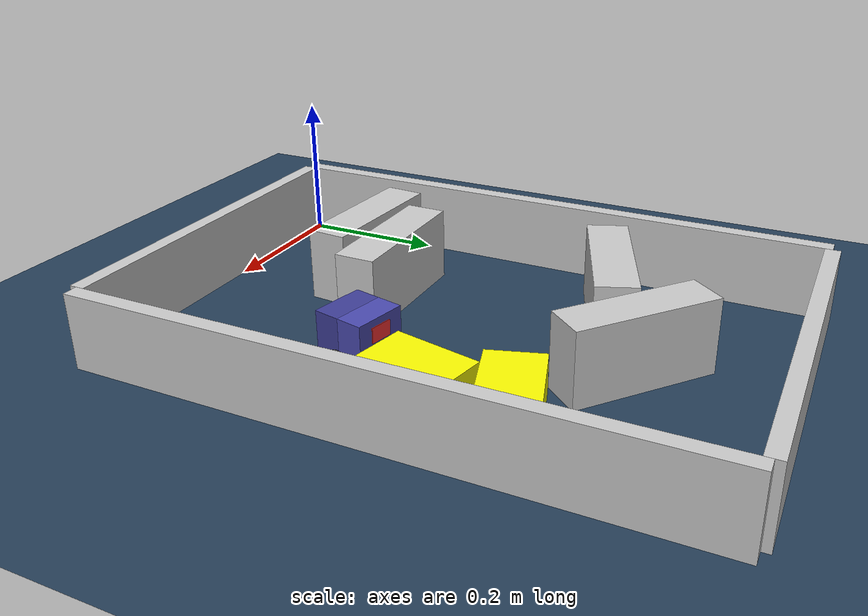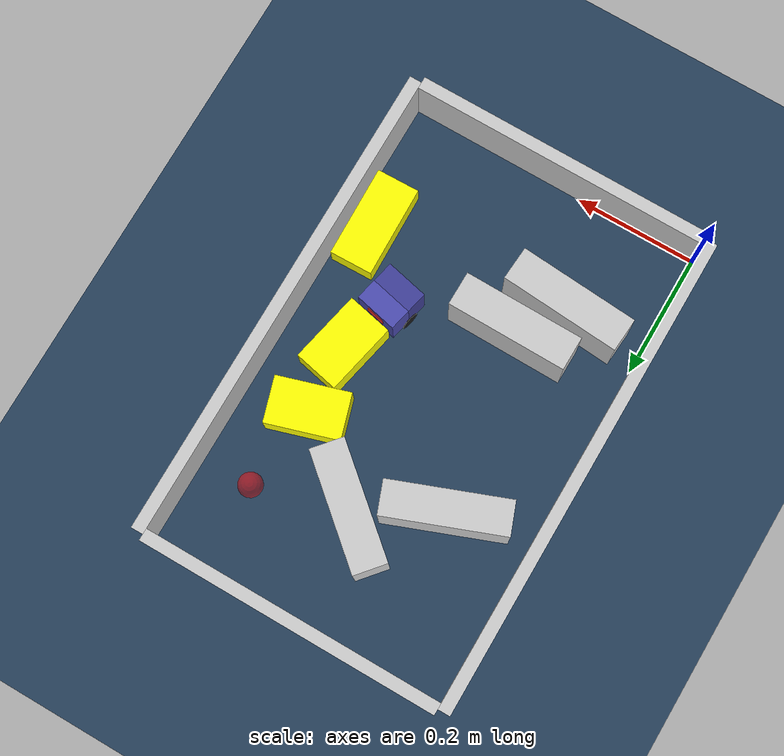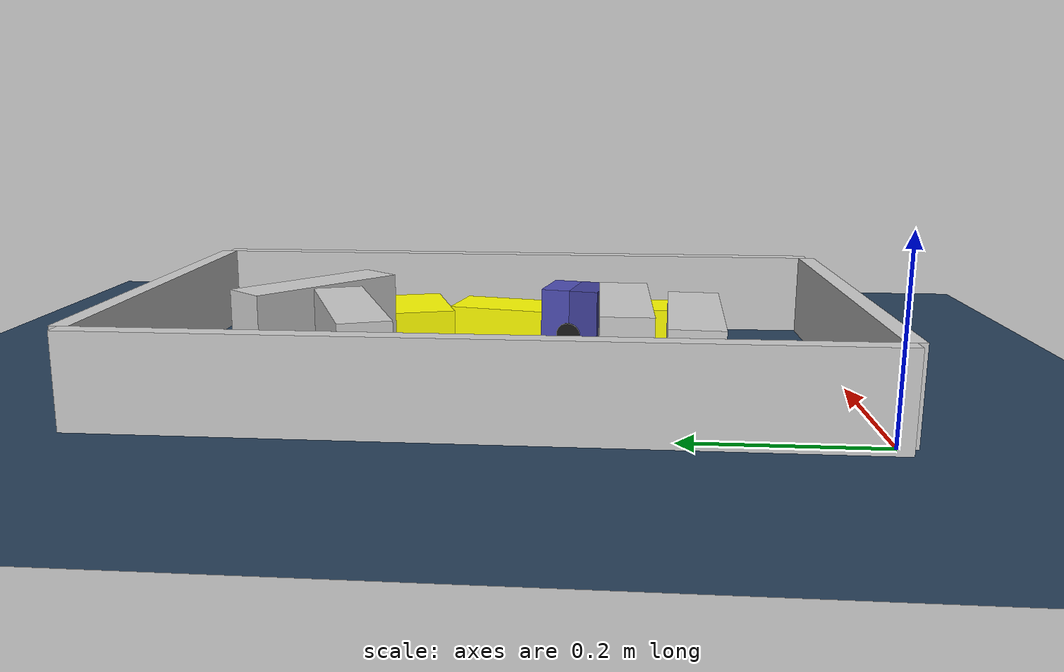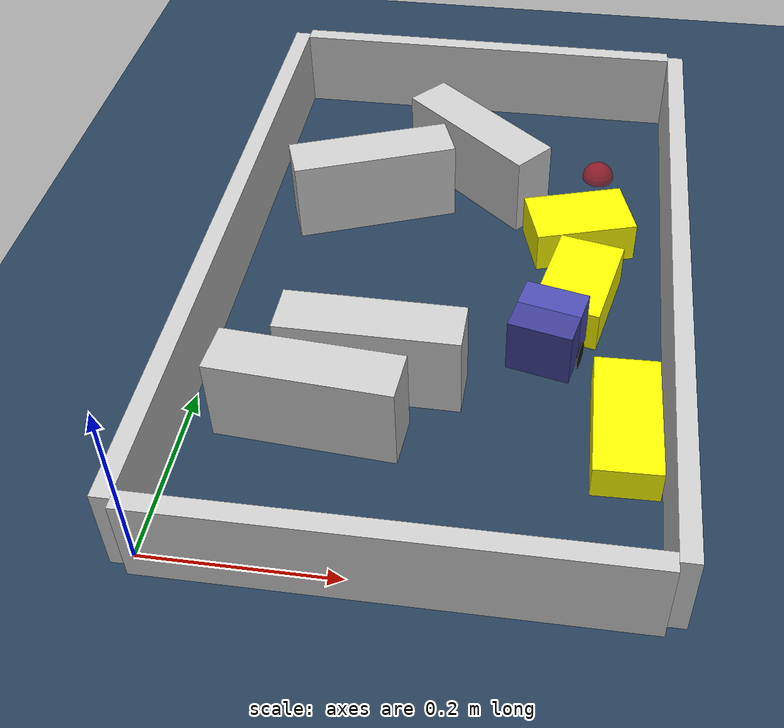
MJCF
<?xml version='1.0' encoding='utf-8'?>
<mujoco model="real_buildable">
  <compiler angle="degree" />
  <option timestep="0.002" integrator="implicitfast" iterations="100" cone="elliptic" />
  <default>
    <geom density="1" />
  </default>
  <asset>
    <texture builtin="gradient" height="3072" rgb1="0.3 0.5 0.7" rgb2="0 0 0" type="skybox" width="512" />
    <texture builtin="checker" height="300" mark="edge" markrgb="0.8 0.8 0.8" name="groundplane" rgb1="0.2 0.3 0.4" rgb2="0.1 0.2 0.3" type="2d" width="300" />
    <material name="groundplane" reflectance="0.2" texrepeat="5 5" texture="groundplane" texuniform="true" />
  </asset>
  <worldbody>
    <light dir="0 0 -1" directional="true" pos="0 0 1.5" />
    <geom name="floor" type="plane" condim="4" friction="0.5 0.005 0.001" material="groundplane" size="0 0 0.05" />
    <body name="walls">
      <geom name="wall_boundary_left" type="box" condim="4" friction="1.0 0.005 0.0001" rgba="0.8 0.8 0.8 1" pos="-0.010000 0.387500 0.050000" euler="0 0 0.000000" size="0.010000 0.397500 0.050000" />
      <geom name="wall_boundary_right" type="box" condim="4" friction="1.0 0.005 0.0001" rgba="0.8 0.8 0.8 1" pos="0.500000 0.387500 0.050000" euler="0 0 0.000000" size="0.010000 0.397500 0.050000" />
      <geom name="wall_boundary_bottom" type="box" condim="4" friction="1.0 0.005 0.0001" rgba="0.8 0.8 0.8 1" pos="0.245000 -0.010000 0.050000" euler="0 0 0.000000" size="0.245000 0.010000 0.050000" />
      <geom name="wall_boundary_top" type="box" condim="4" friction="1.0 0.005 0.0001" rgba="0.8 0.8 0.8 1" pos="0.245000 0.785000 0.050000" euler="0 0 0.000000" size="0.245000 0.010000 0.050000" />
      <geom name="wall_inner_1" type="box" condim="4" friction="1.0 0.005 0.0001" rgba="0.8 0.8 0.8 1" pos="0.130406 0.172466 0.050000" euler="0 0 -4.223531" size="0.097500 0.027500 0.050000" />
      <geom name="wall_inner_2" type="box" condim="4" friction="1.0 0.005 0.0001" rgba="0.8 0.8 0.8 1" pos="0.183492 0.241933 0.050000" euler="0 0 -0.526590" size="0.097500 0.027500 0.050000" />
      <geom name="wall_inner_3" type="box" condim="4" friction="1.0 0.005 0.0001" rgba="0.8 0.8 0.8 1" pos="0.132000 0.532000 0.050000" euler="0 0 20.900000" size="0.097500 0.027500 0.050000" />
      <geom name="wall_inner_4" type="box" condim="4" friction="1.0 0.005 0.0001" rgba="0.8 0.8 0.8 1" pos="0.256000 0.601000 0.050000" euler="0 0 139.600000" size="0.097500 0.027500 0.050000" />
    </body>
    <body name="car" pos="0.36344684804417576 0.29677605651774736 0.01" quat="0.78122102495925461 0 0 0.62425452354116884">
      <freejoint name="car_freejoint" />
      <inertial pos="0 0 0.0375" mass="0.35" diaginertia="0.000266 0.000266 0.000286" />
      <geom name="front_chassis_collision" type="box" pos="0.0175 0 0.0375" size="0.0175 0.035 0.0325" rgba="0.3 0.3 0.7 1" />
      <geom name="rear_chassis_collision" type="box" pos="-0.0175 0 0.0375" size="0.0175 0.035 0.0325" rgba="0.25 0.25 0.6 1" />
      <geom name="front_marker" type="box" pos="0.034 0 0.0505" size="0.002 0.015 0.01" rgba="1 0.2 0.2 1" contype="0" conaffinity="0" />
      <body name="rear_support_body" pos="-0.03 0 0.0025">
        <joint name="rear_caster_joint" type="ball" damping="0.0001" />
        <inertial pos="0 0 0" mass="0.025" diaginertia="0.000001 0.000001 0.000001" />
        <geom name="rear_support" type="sphere" pos="0 0 0" size="0.0025" friction="0 0 0" rgba="0.7 0.1 0.1 1" />
      </body>
      <body name="front_support_body" pos="0.03 0 0.0025">
        <joint name="front_caster_joint" type="ball" damping="0.0001" />
        <inertial pos="0 0 0" mass="0.025" diaginertia="0.000001 0.000001 0.000001" />
        <geom name="front_support" type="sphere" pos="0 0 0" size="0.0025" friction="0 0 0" rgba="0.1 0.7 0.1 1" />
      </body>
      <body name="left_wheel" pos="0 0.0375 0.015">
        <inertial pos="0 0 0" mass="0.05" diaginertia="0.000003 0.000006 0.000003" />
        <joint name="left_wheel_joint" type="hinge" axis="0 1 0" damping="0.01" armature="0.0001" />
        <geom name="left_wheel_collision" type="cylinder" size="0.015 0.0005" euler="90 0 0" rgba="0.1 0.1 0.1 1" />
      </body>
      <body name="right_wheel" pos="0 -0.0375 0.015">
        <inertial pos="0 0 0" mass="0.05" diaginertia="0.000003 0.000006 0.000003" />
        <joint name="right_wheel_joint" type="hinge" axis="0 1 0" damping="0.01" armature="0.0001" />
        <geom name="right_wheel_collision" type="cylinder" size="0.015 0.0005" euler="90 0 0" rgba="0.1 0.1 0.1 1" />
      </body>
    </body>
    <body name="obstacle_0_movable">
      <geom name="obstacle_0_movable" condim="4" pos="0.39381257056511743 0.3894770340876984 0.025000000000000001" friction="1 0.005 0.0001" rgba="1 1 0 1" size="0.037500 0.060000 0.025000" type="box" mass="0.1" quat="0.10583590550442051 0 0 0.99438360862700237" />
      <joint type="free" />
    </body>
    <body name="obstacle_1_movable">
      <geom name="obstacle_1_movable" condim="4" pos="0.388905732094324 0.50121114354940799 0.025000000000000001" friction="1 0.005 0.0001" rgba="1 1 0 1" size="0.037500 0.060000 0.025000" type="box" mass="0.1" quat="0.80400806124513347 0 0 -0.59461839649714987" />
      <joint type="free" />
    </body>
    <body name="obstacle_2_movable">
      <geom name="obstacle_2_movable" condim="4" pos="0.45126200000000022 0.19986399999999996 0.02" friction="1 0.005 0.0001" rgba="1 1 0 1" size="0.035000 0.075000 0.020000" type="box" mass="0.1" quat="0.99993489935645363 0 0 0.011410392149222008" />
      <joint type="free" />
    </body>
    <site name="goal" type="sphere" pos="0.410000 0.640000 0.0" size="0.02" rgba="1 0 0 0.5" />
  </worldbody>
  <actuator>
    <velocity name="left_wheel_drive" joint="left_wheel_joint" ctrlrange="-25 25" kv="0.75" forcerange="-0.5 0.5" />
    <velocity name="right_wheel_drive" joint="right_wheel_joint" ctrlrange="-25 25" kv="0.75" forcerange="-0.5 0.5" />
  </actuator>
</mujoco>
